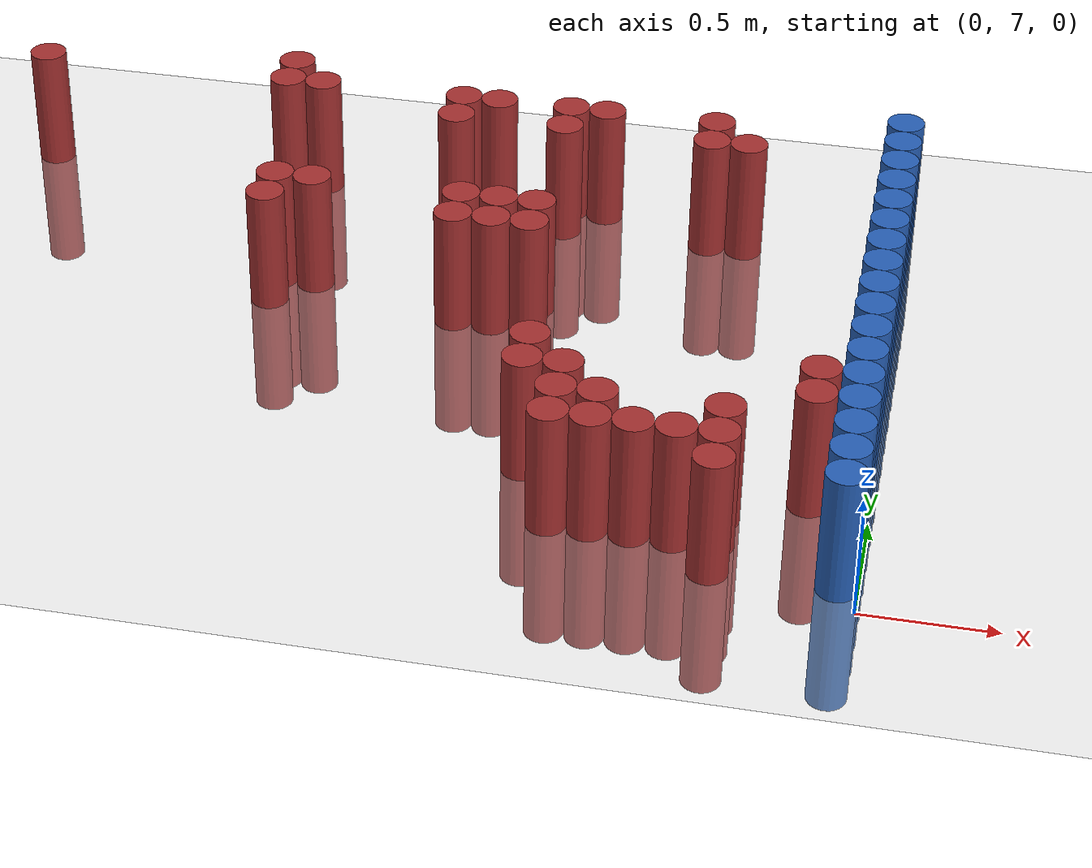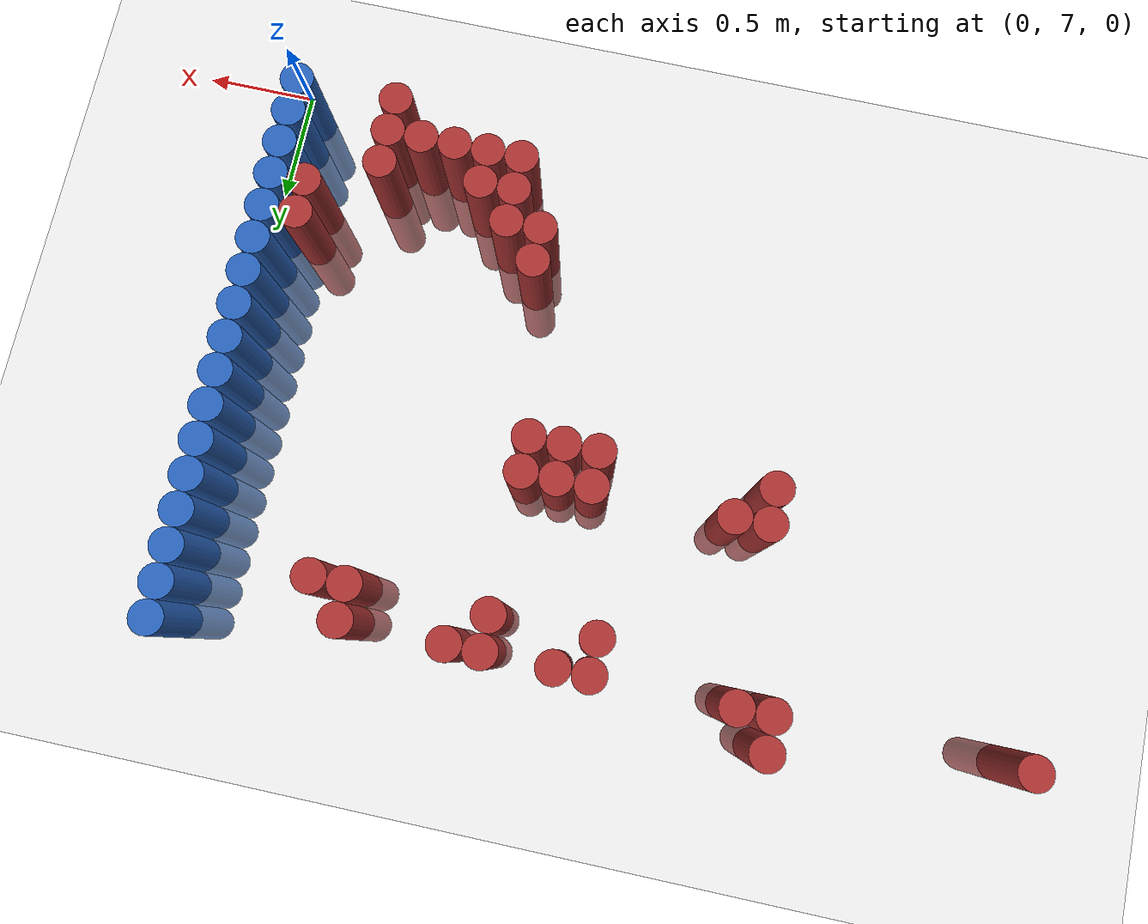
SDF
<sdf version="1.6">
 <world name="default">
  <model name="ground_plane">
   <static>1</static>
   <link name="link">
    <collision name="collision">
     <geometry><plane><normal>0 0 1</normal><size>100 100</size></plane></geometry>
     <surface><friction><ode><mu>100</mu><mu2>50</mu2></ode></friction></surface>
    </collision>
    <visual name="visual">
     <cast_shadows>0</cast_shadows>
     <geometry><plane><normal>0 0 1</normal><size>100 100</size></plane></geometry>
     <material>
      <script><uri>file://media/materials/scripts/gazebo.material</uri><name>Gazebo/Grey</name></script>
     </material>
    </visual>
   </link>
  </model>
  <model name="unit_cylinder_154">
   <static>1</static>
   <pose>-3.675000 9.375000 0.000000 0.000000 0.000000 0.000000</pose>
   <link name="link">
    <inertial>
     <mass>1</mass>
     <inertia><ixx>0.145833</ixx><ixy>0</ixy><ixz>0</ixz><iyy>0.145833</iyy><iyz>0</iyz><izz>0.125</izz></inertia>
    </inertial>
    <collision name="collision">
     <geometry><cylinder><radius>0.075000</radius><length>1</length></cylinder></geometry>
    </collision>
    <visual name="visual">
     <geometry><cylinder><radius>0.075000</radius><length>1</length></cylinder></geometry>
     <material>
      <ambient>0.648000 0.192000 0.192000 1</ambient>
      <diffuse>0.648000 0.192000 0.192000 1</diffuse>
     </material>
     <material>
      <script><name>Gazebo/Grey</name><uri>file://media/materials/scripts/gazebo.material</uri></script>
     </material>
    </visual>
   </link>
  </model>
  <model name="unit_cylinder_165">
   <static>1</static>
   <pose>-2.625000 9.375000 0.000000 0.000000 0.000000 0.000000</pose>
   <link name="link">
    <inertial>
     <mass>1</mass>
     <inertia><ixx>0.145833</ixx><ixy>0</ixy><ixz>0</ixz><iyy>0.145833</iyy><iyz>0</iyz><izz>0.125</izz></inertia>
    </inertial>
    <collision name="collision">
     <geometry><cylinder><radius>0.075000</radius><length>1</length></cylinder></geometry>
    </collision>
    <visual name="visual">
     <geometry><cylinder><radius>0.075000</radius><length>1</length></cylinder></geometry>
     <material>
      <ambient>0.648000 0.192000 0.192000 1</ambient>
      <diffuse>0.648000 0.192000 0.192000 1</diffuse>
     </material>
     <material>
      <script><name>Gazebo/Grey</name><uri>file://media/materials/scripts/gazebo.material</uri></script>
     </material>
    </visual>
   </link>
  </model>
  <model name="unit_cylinder_166">
   <static>1</static>
   <pose>-2.625000 9.525000 0.000000 0.000000 0.000000 0.000000</pose>
   <link name="link">
    <inertial>
     <mass>1</mass>
     <inertia><ixx>0.145833</ixx><ixy>0</ixy><ixz>0</ixz><iyy>0.145833</iyy><iyz>0</iyz><izz>0.125</izz></inertia>
    </inertial>
    <collision name="collision">
     <geometry><cylinder><radius>0.075000</radius><length>1</length></cylinder></geometry>
    </collision>
    <visual name="visual">
     <geometry><cylinder><radius>0.075000</radius><length>1</length></cylinder></geometry>
     <material>
      <ambient>0.648000 0.192000 0.192000 1</ambient>
      <diffuse>0.648000 0.192000 0.192000 1</diffuse>
     </material>
     <material>
      <script><name>Gazebo/Grey</name><uri>file://media/materials/scripts/gazebo.material</uri></script>
     </material>
    </visual>
   </link>
  </model>
  <model name="unit_cylinder_168">
   <static>1</static>
   <pose>-2.475000 8.475000 0.000000 0.000000 0.000000 0.000000</pose>
   <link name="link">
    <inertial>
     <mass>1</mass>
     <inertia><ixx>0.145833</ixx><ixy>0</ixy><ixz>0</ixz><iyy>0.145833</iyy><iyz>0</iyz><izz>0.125</izz></inertia>
    </inertial>
    <collision name="collision">
     <geometry><cylinder><radius>0.075000</radius><length>1</length></cylinder></geometry>
    </collision>
    <visual name="visual">
     <geometry><cylinder><radius>0.075000</radius><length>1</length></cylinder></geometry>
     <material>
      <ambient>0.648000 0.192000 0.192000 1</ambient>
      <diffuse>0.648000 0.192000 0.192000 1</diffuse>
     </material>
     <material>
      <script><name>Gazebo/Grey</name><uri>file://media/materials/scripts/gazebo.material</uri></script>
     </material>
    </visual>
   </link>
  </model>
  <model name="unit_cylinder_169">
   <static>1</static>
   <pose>-2.475000 8.625000 0.000000 0.000000 0.000000 0.000000</pose>
   <link name="link">
    <inertial>
     <mass>1</mass>
     <inertia><ixx>0.145833</ixx><ixy>0</ixy><ixz>0</ixz><iyy>0.145833</iyy><iyz>0</iyz><izz>0.125</izz></inertia>
    </inertial>
    <collision name="collision">
     <geometry><cylinder><radius>0.075000</radius><length>1</length></cylinder></geometry>
    </collision>
    <visual name="visual">
     <geometry><cylinder><radius>0.075000</radius><length>1</length></cylinder></geometry>
     <material>
      <ambient>0.648000 0.192000 0.192000 1</ambient>
      <diffuse>0.648000 0.192000 0.192000 1</diffuse>
     </material>
     <material>
      <script><name>Gazebo/Grey</name><uri>file://media/materials/scripts/gazebo.material</uri></script>
     </material>
    </visual>
   </link>
  </model>
  <model name="unit_cylinder_170">
   <static>1</static>
   <pose>-2.475000 9.375000 0.000000 0.000000 0.000000 0.000000</pose>
   <link name="link">
    <inertial>
     <mass>1</mass>
     <inertia><ixx>0.145833</ixx><ixy>0</ixy><ixz>0</ixz><iyy>0.145833</iyy><iyz>0</iyz><izz>0.125</izz></inertia>
    </inertial>
    <collision name="collision">
     <geometry><cylinder><radius>0.075000</radius><length>1</length></cylinder></geometry>
    </collision>
    <visual name="visual">
     <geometry><cylinder><radius>0.075000</radius><length>1</length></cylinder></geometry>
     <material>
      <ambient>0.648000 0.192000 0.192000 1</ambient>
      <diffuse>0.648000 0.192000 0.192000 1</diffuse>
     </material>
     <material>
      <script><name>Gazebo/Grey</name><uri>file://media/materials/scripts/gazebo.material</uri></script>
     </material>
    </visual>
   </link>
  </model>
  <model name="unit_cylinder_173">
   <static>1</static>
   <pose>-2.325000 8.625000 0.000000 0.000000 0.000000 0.000000</pose>
   <link name="link">
    <inertial>
     <mass>1</mass>
     <inertia><ixx>0.145833</ixx><ixy>0</ixy><ixz>0</ixz><iyy>0.145833</iyy><iyz>0</iyz><izz>0.125</izz></inertia>
    </inertial>
    <collision name="collision">
     <geometry><cylinder><radius>0.075000</radius><length>1</length></cylinder></geometry>
    </collision>
    <visual name="visual">
     <geometry><cylinder><radius>0.075000</radius><length>1</length></cylinder></geometry>
     <material>
      <ambient>0.648000 0.192000 0.192000 1</ambient>
      <diffuse>0.648000 0.192000 0.192000 1</diffuse>
     </material>
     <material>
      <script><name>Gazebo/Grey</name><uri>file://media/materials/scripts/gazebo.material</uri></script>
     </material>
    </visual>
   </link>
  </model>
  <model name="unit_cylinder_179">
   <static>1</static>
   <pose>-1.875000 9.225000 0.000000 0.000000 0.000000 0.000000</pose>
   <link name="link">
    <inertial>
     <mass>1</mass>
     <inertia><ixx>0.145833</ixx><ixy>0</ixy><ixz>0</ixz><iyy>0.145833</iyy><iyz>0</iyz><izz>0.125</izz></inertia>
    </inertial>
    <collision name="collision">
     <geometry><cylinder><radius>0.075000</radius><length>1</length></cylinder></geometry>
    </collision>
    <visual name="visual">
     <geometry><cylinder><radius>0.075000</radius><length>1</length></cylinder></geometry>
     <material>
      <ambient>0.648000 0.192000 0.192000 1</ambient>
      <diffuse>0.648000 0.192000 0.192000 1</diffuse>
     </material>
     <material>
      <script><name>Gazebo/Grey</name><uri>file://media/materials/scripts/gazebo.material</uri></script>
     </material>
    </visual>
   </link>
  </model>
  <model name="unit_cylinder_180">
   <static>1</static>
   <pose>-1.875000 9.375000 0.000000 0.000000 0.000000 0.000000</pose>
   <link name="link">
    <inertial>
     <mass>1</mass>
     <inertia><ixx>0.145833</ixx><ixy>0</ixy><ixz>0</ixz><iyy>0.145833</iyy><iyz>0</iyz><izz>0.125</izz></inertia>
    </inertial>
    <collision name="collision">
     <geometry><cylinder><radius>0.075000</radius><length>1</length></cylinder></geometry>
    </collision>
    <visual name="visual">
     <geometry><cylinder><radius>0.075000</radius><length>1</length></cylinder></geometry>
     <material>
      <ambient>0.648000 0.192000 0.192000 1</ambient>
      <diffuse>0.648000 0.192000 0.192000 1</diffuse>
     </material>
     <material>
      <script><name>Gazebo/Grey</name><uri>file://media/materials/scripts/gazebo.material</uri></script>
     </material>
    </visual>
   </link>
  </model>
  <model name="unit_cylinder_181">
   <static>1</static>
   <pose>-1.725000 8.475000 0.000000 0.000000 0.000000 0.000000</pose>
   <link name="link">
    <inertial>
     <mass>1</mass>
     <inertia><ixx>0.145833</ixx><ixy>0</ixy><ixz>0</ixz><iyy>0.145833</iyy><iyz>0</iyz><izz>0.125</izz></inertia>
    </inertial>
    <collision name="collision">
     <geometry><cylinder><radius>0.075000</radius><length>1</length></cylinder></geometry>
    </collision>
    <visual name="visual">
     <geometry><cylinder><radius>0.075000</radius><length>1</length></cylinder></geometry>
     <material>
      <ambient>0.648000 0.192000 0.192000 1</ambient>
      <diffuse>0.648000 0.192000 0.192000 1</diffuse>
     </material>
     <material>
      <script><name>Gazebo/Grey</name><uri>file://media/materials/scripts/gazebo.material</uri></script>
     </material>
    </visual>
   </link>
  </model>
  <model name="unit_cylinder_182">
   <static>1</static>
   <pose>-1.725000 8.625000 0.000000 0.000000 0.000000 0.000000</pose>
   <link name="link">
    <inertial>
     <mass>1</mass>
     <inertia><ixx>0.145833</ixx><ixy>0</ixy><ixz>0</ixz><iyy>0.145833</iyy><iyz>0</iyz><izz>0.125</izz></inertia>
    </inertial>
    <collision name="collision">
     <geometry><cylinder><radius>0.075000</radius><length>1</length></cylinder></geometry>
    </collision>
    <visual name="visual">
     <geometry><cylinder><radius>0.075000</radius><length>1</length></cylinder></geometry>
     <material>
      <ambient>0.648000 0.192000 0.192000 1</ambient>
      <diffuse>0.648000 0.192000 0.192000 1</diffuse>
     </material>
     <material>
      <script><name>Gazebo/Grey</name><uri>file://media/materials/scripts/gazebo.material</uri></script>
     </material>
    </visual>
   </link>
  </model>
  <model name="unit_cylinder_183">
   <static>1</static>
   <pose>-1.725000 9.375000 0.000000 0.000000 0.000000 0.000000</pose>
   <link name="link">
    <inertial>
     <mass>1</mass>
     <inertia><ixx>0.145833</ixx><ixy>0</ixy><ixz>0</ixz><iyy>0.145833</iyy><iyz>0</iyz><izz>0.125</izz></inertia>
    </inertial>
    <collision name="collision">
     <geometry><cylinder><radius>0.075000</radius><length>1</length></cylinder></geometry>
    </collision>
    <visual name="visual">
     <geometry><cylinder><radius>0.075000</radius><length>1</length></cylinder></geometry>
     <material>
      <ambient>0.648000 0.192000 0.192000 1</ambient>
      <diffuse>0.648000 0.192000 0.192000 1</diffuse>
     </material>
     <material>
      <script><name>Gazebo/Grey</name><uri>file://media/materials/scripts/gazebo.material</uri></script>
     </material>
    </visual>
   </link>
  </model>
  <model name="unit_cylinder_184">
   <static>1</static>
   <pose>-1.575000 8.475000 0.000000 0.000000 0.000000 0.000000</pose>
   <link name="link">
    <inertial>
     <mass>1</mass>
     <inertia><ixx>0.145833</ixx><ixy>0</ixy><ixz>0</ixz><iyy>0.145833</iyy><iyz>0</iyz><izz>0.125</izz></inertia>
    </inertial>
    <collision name="collision">
     <geometry><cylinder><radius>0.075000</radius><length>1</length></cylinder></geometry>
    </collision>
    <visual name="visual">
     <geometry><cylinder><radius>0.075000</radius><length>1</length></cylinder></geometry>
     <material>
      <ambient>0.648000 0.192000 0.192000 1</ambient>
      <diffuse>0.648000 0.192000 0.192000 1</diffuse>
     </material>
     <material>
      <script><name>Gazebo/Grey</name><uri>file://media/materials/scripts/gazebo.material</uri></script>
     </material>
    </visual>
   </link>
  </model>
  <model name="unit_cylinder_185">
   <static>1</static>
   <pose>-1.575000 8.625000 0.000000 0.000000 0.000000 0.000000</pose>
   <link name="link">
    <inertial>
     <mass>1</mass>
     <inertia><ixx>0.145833</ixx><ixy>0</ixy><ixz>0</ixz><iyy>0.145833</iyy><iyz>0</iyz><izz>0.125</izz></inertia>
    </inertial>
    <collision name="collision">
     <geometry><cylinder><radius>0.075000</radius><length>1</length></cylinder></geometry>
    </collision>
    <visual name="visual">
     <geometry><cylinder><radius>0.075000</radius><length>1</length></cylinder></geometry>
     <material>
      <ambient>0.648000 0.192000 0.192000 1</ambient>
      <diffuse>0.648000 0.192000 0.192000 1</diffuse>
     </material>
     <material>
      <script><name>Gazebo/Grey</name><uri>file://media/materials/scripts/gazebo.material</uri></script>
     </material>
    </visual>
   </link>
  </model>
  <model name="unit_cylinder_186">
   <static>1</static>
   <pose>-1.425000 8.475000 0.000000 0.000000 0.000000 0.000000</pose>
   <link name="link">
    <inertial>
     <mass>1</mass>
     <inertia><ixx>0.145833</ixx><ixy>0</ixy><ixz>0</ixz><iyy>0.145833</iyy><iyz>0</iyz><izz>0.125</izz></inertia>
    </inertial>
    <collision name="collision">
     <geometry><cylinder><radius>0.075000</radius><length>1</length></cylinder></geometry>
    </collision>
    <visual name="visual">
     <geometry><cylinder><radius>0.075000</radius><length>1</length></cylinder></geometry>
     <material>
      <ambient>0.648000 0.192000 0.192000 1</ambient>
      <diffuse>0.648000 0.192000 0.192000 1</diffuse>
     </material>
     <material>
      <script><name>Gazebo/Grey</name><uri>file://media/materials/scripts/gazebo.material</uri></script>
     </material>
    </visual>
   </link>
  </model>
  <model name="unit_cylinder_187">
   <static>1</static>
   <pose>-1.425000 8.625000 0.000000 0.000000 0.000000 0.000000</pose>
   <link name="link">
    <inertial>
     <mass>1</mass>
     <inertia><ixx>0.145833</ixx><ixy>0</ixy><ixz>0</ixz><iyy>0.145833</iyy><iyz>0</iyz><izz>0.125</izz></inertia>
    </inertial>
    <collision name="collision">
     <geometry><cylinder><radius>0.075000</radius><length>1</length></cylinder></geometry>
    </collision>
    <visual name="visual">
     <geometry><cylinder><radius>0.075000</radius><length>1</length></cylinder></geometry>
     <material>
      <ambient>0.648000 0.192000 0.192000 1</ambient>
      <diffuse>0.648000 0.192000 0.192000 1</diffuse>
     </material>
     <material>
      <script><name>Gazebo/Grey</name><uri>file://media/materials/scripts/gazebo.material</uri></script>
     </material>
    </visual>
   </link>
  </model>
  <model name="unit_cylinder_188">
   <static>1</static>
   <pose>-1.425000 9.225000 0.000000 0.000000 0.000000 0.000000</pose>
   <link name="link">
    <inertial>
     <mass>1</mass>
     <inertia><ixx>0.145833</ixx><ixy>0</ixy><ixz>0</ixz><iyy>0.145833</iyy><iyz>0</iyz><izz>0.125</izz></inertia>
    </inertial>
    <collision name="collision">
     <geometry><cylinder><radius>0.075000</radius><length>1</length></cylinder></geometry>
    </collision>
    <visual name="visual">
     <geometry><cylinder><radius>0.075000</radius><length>1</length></cylinder></geometry>
     <material>
      <ambient>0.648000 0.192000 0.192000 1</ambient>
      <diffuse>0.648000 0.192000 0.192000 1</diffuse>
     </material>
     <material>
      <script><name>Gazebo/Grey</name><uri>file://media/materials/scripts/gazebo.material</uri></script>
     </material>
    </visual>
   </link>
  </model>
  <model name="unit_cylinder_189">
   <static>1</static>
   <pose>-1.425000 9.375000 0.000000 0.000000 0.000000 0.000000</pose>
   <link name="link">
    <inertial>
     <mass>1</mass>
     <inertia><ixx>0.145833</ixx><ixy>0</ixy><ixz>0</ixz><iyy>0.145833</iyy><iyz>0</iyz><izz>0.125</izz></inertia>
    </inertial>
    <collision name="collision">
     <geometry><cylinder><radius>0.075000</radius><length>1</length></cylinder></geometry>
    </collision>
    <visual name="visual">
     <geometry><cylinder><radius>0.075000</radius><length>1</length></cylinder></geometry>
     <material>
      <ambient>0.648000 0.192000 0.192000 1</ambient>
      <diffuse>0.648000 0.192000 0.192000 1</diffuse>
     </material>
     <material>
      <script><name>Gazebo/Grey</name><uri>file://media/materials/scripts/gazebo.material</uri></script>
     </material>
    </visual>
   </link>
  </model>
  <model name="unit_cylinder_190">
   <static>1</static>
   <pose>-1.275000 7.575000 0.000000 0.000000 0.000000 0.000000</pose>
   <link name="link">
    <inertial>
     <mass>1</mass>
     <inertia><ixx>0.145833</ixx><ixy>0</ixy><ixz>0</ixz><iyy>0.145833</iyy><iyz>0</iyz><izz>0.125</izz></inertia>
    </inertial>
    <collision name="collision">
     <geometry><cylinder><radius>0.075000</radius><length>1</length></cylinder></geometry>
    </collision>
    <visual name="visual">
     <geometry><cylinder><radius>0.075000</radius><length>1</length></cylinder></geometry>
     <material>
      <ambient>0.648000 0.192000 0.192000 1</ambient>
      <diffuse>0.648000 0.192000 0.192000 1</diffuse>
     </material>
     <material>
      <script><name>Gazebo/Grey</name><uri>file://media/materials/scripts/gazebo.material</uri></script>
     </material>
    </visual>
   </link>
  </model>
  <model name="unit_cylinder_191">
   <static>1</static>
   <pose>-1.275000 7.725000 0.000000 0.000000 0.000000 0.000000</pose>
   <link name="link">
    <inertial>
     <mass>1</mass>
     <inertia><ixx>0.145833</ixx><ixy>0</ixy><ixz>0</ixz><iyy>0.145833</iyy><iyz>0</iyz><izz>0.125</izz></inertia>
    </inertial>
    <collision name="collision">
     <geometry><cylinder><radius>0.075000</radius><length>1</length></cylinder></geometry>
    </collision>
    <visual name="visual">
     <geometry><cylinder><radius>0.075000</radius><length>1</length></cylinder></geometry>
     <material>
      <ambient>0.648000 0.192000 0.192000 1</ambient>
      <diffuse>0.648000 0.192000 0.192000 1</diffuse>
     </material>
     <material>
      <script><name>Gazebo/Grey</name><uri>file://media/materials/scripts/gazebo.material</uri></script>
     </material>
    </visual>
   </link>
  </model>
  <model name="unit_cylinder_192">
   <static>1</static>
   <pose>-1.275000 9.375000 0.000000 0.000000 0.000000 0.000000</pose>
   <link name="link">
    <inertial>
     <mass>1</mass>
     <inertia><ixx>0.145833</ixx><ixy>0</ixy><ixz>0</ixz><iyy>0.145833</iyy><iyz>0</iyz><izz>0.125</izz></inertia>
    </inertial>
    <collision name="collision">
     <geometry><cylinder><radius>0.075000</radius><length>1</length></cylinder></geometry>
    </collision>
    <visual name="visual">
     <geometry><cylinder><radius>0.075000</radius><length>1</length></cylinder></geometry>
     <material>
      <ambient>0.648000 0.192000 0.192000 1</ambient>
      <diffuse>0.648000 0.192000 0.192000 1</diffuse>
     </material>
     <material>
      <script><name>Gazebo/Grey</name><uri>file://media/materials/scripts/gazebo.material</uri></script>
     </material>
    </visual>
   </link>
  </model>
  <model name="unit_cylinder_194">
   <static>1</static>
   <pose>-1.125000 7.275000 0.000000 0.000000 0.000000 0.000000</pose>
   <link name="link">
    <inertial>
     <mass>1</mass>
     <inertia><ixx>0.145833</ixx><ixy>0</ixy><ixz>0</ixz><iyy>0.145833</iyy><iyz>0</iyz><izz>0.125</izz></inertia>
    </inertial>
    <collision name="collision">
     <geometry><cylinder><radius>0.075000</radius><length>1</length></cylinder></geometry>
    </collision>
    <visual name="visual">
     <geometry><cylinder><radius>0.075000</radius><length>1</length></cylinder></geometry>
     <material>
      <ambient>0.648000 0.192000 0.192000 1</ambient>
      <diffuse>0.648000 0.192000 0.192000 1</diffuse>
     </material>
     <material>
      <script><name>Gazebo/Grey</name><uri>file://media/materials/scripts/gazebo.material</uri></script>
     </material>
    </visual>
   </link>
  </model>
  <model name="unit_cylinder_195">
   <static>1</static>
   <pose>-1.125000 7.425000 0.000000 0.000000 0.000000 0.000000</pose>
   <link name="link">
    <inertial>
     <mass>1</mass>
     <inertia><ixx>0.145833</ixx><ixy>0</ixy><ixz>0</ixz><iyy>0.145833</iyy><iyz>0</iyz><izz>0.125</izz></inertia>
    </inertial>
    <collision name="collision">
     <geometry><cylinder><radius>0.075000</radius><length>1</length></cylinder></geometry>
    </collision>
    <visual name="visual">
     <geometry><cylinder><radius>0.075000</radius><length>1</length></cylinder></geometry>
     <material>
      <ambient>0.648000 0.192000 0.192000 1</ambient>
      <diffuse>0.648000 0.192000 0.192000 1</diffuse>
     </material>
     <material>
      <script><name>Gazebo/Grey</name><uri>file://media/materials/scripts/gazebo.material</uri></script>
     </material>
    </visual>
   </link>
  </model>
  <model name="unit_cylinder_196">
   <static>1</static>
   <pose>-1.125000 7.575000 0.000000 0.000000 0.000000 0.000000</pose>
   <link name="link">
    <inertial>
     <mass>1</mass>
     <inertia><ixx>0.145833</ixx><ixy>0</ixy><ixz>0</ixz><iyy>0.145833</iyy><iyz>0</iyz><izz>0.125</izz></inertia>
    </inertial>
    <collision name="collision">
     <geometry><cylinder><radius>0.075000</radius><length>1</length></cylinder></geometry>
    </collision>
    <visual name="visual">
     <geometry><cylinder><radius>0.075000</radius><length>1</length></cylinder></geometry>
     <material>
      <ambient>0.648000 0.192000 0.192000 1</ambient>
      <diffuse>0.648000 0.192000 0.192000 1</diffuse>
     </material>
     <material>
      <script><name>Gazebo/Grey</name><uri>file://media/materials/scripts/gazebo.material</uri></script>
     </material>
    </visual>
   </link>
  </model>
  <model name="unit_cylinder_198">
   <static>1</static>
   <pose>-0.975000 7.275000 0.000000 0.000000 0.000000 0.000000</pose>
   <link name="link">
    <inertial>
     <mass>1</mass>
     <inertia><ixx>0.145833</ixx><ixy>0</ixy><ixz>0</ixz><iyy>0.145833</iyy><iyz>0</iyz><izz>0.125</izz></inertia>
    </inertial>
    <collision name="collision">
     <geometry><cylinder><radius>0.075000</radius><length>1</length></cylinder></geometry>
    </collision>
    <visual name="visual">
     <geometry><cylinder><radius>0.075000</radius><length>1</length></cylinder></geometry>
     <material>
      <ambient>0.648000 0.192000 0.192000 1</ambient>
      <diffuse>0.648000 0.192000 0.192000 1</diffuse>
     </material>
     <material>
      <script><name>Gazebo/Grey</name><uri>file://media/materials/scripts/gazebo.material</uri></script>
     </material>
    </visual>
   </link>
  </model>
  <model name="unit_cylinder_199">
   <static>1</static>
   <pose>-0.975000 7.425000 0.000000 0.000000 0.000000 0.000000</pose>
   <link name="link">
    <inertial>
     <mass>1</mass>
     <inertia><ixx>0.145833</ixx><ixy>0</ixy><ixz>0</ixz><iyy>0.145833</iyy><iyz>0</iyz><izz>0.125</izz></inertia>
    </inertial>
    <collision name="collision">
     <geometry><cylinder><radius>0.075000</radius><length>1</length></cylinder></geometry>
    </collision>
    <visual name="visual">
     <geometry><cylinder><radius>0.075000</radius><length>1</length></cylinder></geometry>
     <material>
      <ambient>0.648000 0.192000 0.192000 1</ambient>
      <diffuse>0.648000 0.192000 0.192000 1</diffuse>
     </material>
     <material>
      <script><name>Gazebo/Grey</name><uri>file://media/materials/scripts/gazebo.material</uri></script>
     </material>
    </visual>
   </link>
  </model>
  <model name="unit_cylinder_203">
   <static>1</static>
   <pose>-0.825000 7.275000 0.000000 0.000000 0.000000 0.000000</pose>
   <link name="link">
    <inertial>
     <mass>1</mass>
     <inertia><ixx>0.145833</ixx><ixy>0</ixy><ixz>0</ixz><iyy>0.145833</iyy><iyz>0</iyz><izz>0.125</izz></inertia>
    </inertial>
    <collision name="collision">
     <geometry><cylinder><radius>0.075000</radius><length>1</length></cylinder></geometry>
    </collision>
    <visual name="visual">
     <geometry><cylinder><radius>0.075000</radius><length>1</length></cylinder></geometry>
     <material>
      <ambient>0.648000 0.192000 0.192000 1</ambient>
      <diffuse>0.648000 0.192000 0.192000 1</diffuse>
     </material>
     <material>
      <script><name>Gazebo/Grey</name><uri>file://media/materials/scripts/gazebo.material</uri></script>
     </material>
    </visual>
   </link>
  </model>
  <model name="unit_cylinder_204">
   <static>1</static>
   <pose>-0.825000 9.225000 0.000000 0.000000 0.000000 0.000000</pose>
   <link name="link">
    <inertial>
     <mass>1</mass>
     <inertia><ixx>0.145833</ixx><ixy>0</ixy><ixz>0</ixz><iyy>0.145833</iyy><iyz>0</iyz><izz>0.125</izz></inertia>
    </inertial>
    <collision name="collision">
     <geometry><cylinder><radius>0.075000</radius><length>1</length></cylinder></geometry>
    </collision>
    <visual name="visual">
     <geometry><cylinder><radius>0.075000</radius><length>1</length></cylinder></geometry>
     <material>
      <ambient>0.648000 0.192000 0.192000 1</ambient>
      <diffuse>0.648000 0.192000 0.192000 1</diffuse>
     </material>
     <material>
      <script><name>Gazebo/Grey</name><uri>file://media/materials/scripts/gazebo.material</uri></script>
     </material>
    </visual>
   </link>
  </model>
  <model name="unit_cylinder_205">
   <static>1</static>
   <pose>-0.825000 9.375000 0.000000 0.000000 0.000000 0.000000</pose>
   <link name="link">
    <inertial>
     <mass>1</mass>
     <inertia><ixx>0.145833</ixx><ixy>0</ixy><ixz>0</ixz><iyy>0.145833</iyy><iyz>0</iyz><izz>0.125</izz></inertia>
    </inertial>
    <collision name="collision">
     <geometry><cylinder><radius>0.075000</radius><length>1</length></cylinder></geometry>
    </collision>
    <visual name="visual">
     <geometry><cylinder><radius>0.075000</radius><length>1</length></cylinder></geometry>
     <material>
      <ambient>0.648000 0.192000 0.192000 1</ambient>
      <diffuse>0.648000 0.192000 0.192000 1</diffuse>
     </material>
     <material>
      <script><name>Gazebo/Grey</name><uri>file://media/materials/scripts/gazebo.material</uri></script>
     </material>
    </visual>
   </link>
  </model>
  <model name="unit_cylinder_209">
   <static>1</static>
   <pose>-0.675000 7.275000 0.000000 0.000000 0.000000 0.000000</pose>
   <link name="link">
    <inertial>
     <mass>1</mass>
     <inertia><ixx>0.145833</ixx><ixy>0</ixy><ixz>0</ixz><iyy>0.145833</iyy><iyz>0</iyz><izz>0.125</izz></inertia>
    </inertial>
    <collision name="collision">
     <geometry><cylinder><radius>0.075000</radius><length>1</length></cylinder></geometry>
    </collision>
    <visual name="visual">
     <geometry><cylinder><radius>0.075000</radius><length>1</length></cylinder></geometry>
     <material>
      <ambient>0.648000 0.192000 0.192000 1</ambient>
      <diffuse>0.648000 0.192000 0.192000 1</diffuse>
     </material>
     <material>
      <script><name>Gazebo/Grey</name><uri>file://media/materials/scripts/gazebo.material</uri></script>
     </material>
    </visual>
   </link>
  </model>
  <model name="unit_cylinder_210">
   <static>1</static>
   <pose>-0.675000 9.225000 0.000000 0.000000 0.000000 0.000000</pose>
   <link name="link">
    <inertial>
     <mass>1</mass>
     <inertia><ixx>0.145833</ixx><ixy>0</ixy><ixz>0</ixz><iyy>0.145833</iyy><iyz>0</iyz><izz>0.125</izz></inertia>
    </inertial>
    <collision name="collision">
     <geometry><cylinder><radius>0.075000</radius><length>1</length></cylinder></geometry>
    </collision>
    <visual name="visual">
     <geometry><cylinder><radius>0.075000</radius><length>1</length></cylinder></geometry>
     <material>
      <ambient>0.648000 0.192000 0.192000 1</ambient>
      <diffuse>0.648000 0.192000 0.192000 1</diffuse>
     </material>
     <material>
      <script><name>Gazebo/Grey</name><uri>file://media/materials/scripts/gazebo.material</uri></script>
     </material>
    </visual>
   </link>
  </model>
  <model name="unit_cylinder_214">
   <static>1</static>
   <pose>-0.525000 7.125000 0.000000 0.000000 0.000000 0.000000</pose>
   <link name="link">
    <inertial>
     <mass>1</mass>
     <inertia><ixx>0.145833</ixx><ixy>0</ixy><ixz>0</ixz><iyy>0.145833</iyy><iyz>0</iyz><izz>0.125</izz></inertia>
    </inertial>
    <collision name="collision">
     <geometry><cylinder><radius>0.075000</radius><length>1</length></cylinder></geometry>
    </collision>
    <visual name="visual">
     <geometry><cylinder><radius>0.075000</radius><length>1</length></cylinder></geometry>
     <material>
      <ambient>0.648000 0.192000 0.192000 1</ambient>
      <diffuse>0.648000 0.192000 0.192000 1</diffuse>
     </material>
     <material>
      <script><name>Gazebo/Grey</name><uri>file://media/materials/scripts/gazebo.material</uri></script>
     </material>
    </visual>
   </link>
  </model>
  <model name="unit_cylinder_215">
   <static>1</static>
   <pose>-0.525000 7.275000 0.000000 0.000000 0.000000 0.000000</pose>
   <link name="link">
    <inertial>
     <mass>1</mass>
     <inertia><ixx>0.145833</ixx><ixy>0</ixy><ixz>0</ixz><iyy>0.145833</iyy><iyz>0</iyz><izz>0.125</izz></inertia>
    </inertial>
    <collision name="collision">
     <geometry><cylinder><radius>0.075000</radius><length>1</length></cylinder></geometry>
    </collision>
    <visual name="visual">
     <geometry><cylinder><radius>0.075000</radius><length>1</length></cylinder></geometry>
     <material>
      <ambient>0.648000 0.192000 0.192000 1</ambient>
      <diffuse>0.648000 0.192000 0.192000 1</diffuse>
     </material>
     <material>
      <script><name>Gazebo/Grey</name><uri>file://media/materials/scripts/gazebo.material</uri></script>
     </material>
    </visual>
   </link>
  </model>
  <model name="unit_cylinder_216">
   <static>1</static>
   <pose>-0.525000 7.425000 0.000000 0.000000 0.000000 0.000000</pose>
   <link name="link">
    <inertial>
     <mass>1</mass>
     <inertia><ixx>0.145833</ixx><ixy>0</ixy><ixz>0</ixz><iyy>0.145833</iyy><iyz>0</iyz><izz>0.125</izz></inertia>
    </inertial>
    <collision name="collision">
     <geometry><cylinder><radius>0.075000</radius><length>1</length></cylinder></geometry>
    </collision>
    <visual name="visual">
     <geometry><cylinder><radius>0.075000</radius><length>1</length></cylinder></geometry>
     <material>
      <ambient>0.648000 0.192000 0.192000 1</ambient>
      <diffuse>0.648000 0.192000 0.192000 1</diffuse>
     </material>
     <material>
      <script><name>Gazebo/Grey</name><uri>file://media/materials/scripts/gazebo.material</uri></script>
     </material>
    </visual>
   </link>
  </model>
  <model name="unit_cylinder_230">
   <static>1</static>
   <pose>-0.225000 7.575000 0.000000 0.000000 0.000000 0.000000</pose>
   <link name="link">
    <inertial>
     <mass>1</mass>
     <inertia><ixx>0.145833</ixx><ixy>0</ixy><ixz>0</ixz><iyy>0.145833</iyy><iyz>0</iyz><izz>0.125</izz></inertia>
    </inertial>
    <collision name="collision">
     <geometry><cylinder><radius>0.075000</radius><length>1</length></cylinder></geometry>
    </collision>
    <visual name="visual">
     <geometry><cylinder><radius>0.075000</radius><length>1</length></cylinder></geometry>
     <material>
      <ambient>0.648000 0.192000 0.192000 1</ambient>
      <diffuse>0.648000 0.192000 0.192000 1</diffuse>
     </material>
     <material>
      <script><name>Gazebo/Grey</name><uri>file://media/materials/scripts/gazebo.material</uri></script>
     </material>
    </visual>
   </link>
  </model>
  <model name="unit_cylinder_231">
   <static>1</static>
   <pose>-0.225000 7.725000 0.000000 0.000000 0.000000 0.000000</pose>
   <link name="link">
    <inertial>
     <mass>1</mass>
     <inertia><ixx>0.145833</ixx><ixy>0</ixy><ixz>0</ixz><iyy>0.145833</iyy><iyz>0</iyz><izz>0.125</izz></inertia>
    </inertial>
    <collision name="collision">
     <geometry><cylinder><radius>0.075000</radius><length>1</length></cylinder></geometry>
    </collision>
    <visual name="visual">
     <geometry><cylinder><radius>0.075000</radius><length>1</length></cylinder></geometry>
     <material>
      <ambient>0.648000 0.192000 0.192000 1</ambient>
      <diffuse>0.648000 0.192000 0.192000 1</diffuse>
     </material>
     <material>
      <script><name>Gazebo/Grey</name><uri>file://media/materials/scripts/gazebo.material</uri></script>
     </material>
    </visual>
   </link>
  </model>
  <model name="unit_cylinder_245">
   <static>1</static>
   <pose>-0.075000 7.125000 0.000000 0.000000 0.000000 0.000000</pose>
   <link name="link">
    <inertial>
     <mass>1</mass>
     <inertia><ixx>0.145833</ixx><ixy>0</ixy><ixz>0</ixz><iyy>0.145833</iyy><iyz>0</iyz><izz>0.125</izz></inertia>
    </inertial>
    <collision name="collision">
     <geometry><cylinder><radius>0.075000</radius><length>1</length></cylinder></geometry>
    </collision>
    <visual name="visual">
     <geometry><cylinder><radius>0.075000</radius><length>1</length></cylinder></geometry>
     <material>
      <ambient>0.152000 0.379000 0.720000 1</ambient>
      <diffuse>0.152000 0.379000 0.720000 1</diffuse>
     </material>
     <material>
      <script><name>Gazebo/Grey</name><uri>file://media/materials/scripts/gazebo.material</uri></script>
     </material>
    </visual>
   </link>
  </model>
  <model name="unit_cylinder_246">
   <static>1</static>
   <pose>-0.075000 7.275000 0.000000 0.000000 0.000000 0.000000</pose>
   <link name="link">
    <inertial>
     <mass>1</mass>
     <inertia><ixx>0.145833</ixx><ixy>0</ixy><ixz>0</ixz><iyy>0.145833</iyy><iyz>0</iyz><izz>0.125</izz></inertia>
    </inertial>
    <collision name="collision">
     <geometry><cylinder><radius>0.075000</radius><length>1</length></cylinder></geometry>
    </collision>
    <visual name="visual">
     <geometry><cylinder><radius>0.075000</radius><length>1</length></cylinder></geometry>
     <material>
      <ambient>0.152000 0.379000 0.720000 1</ambient>
      <diffuse>0.152000 0.379000 0.720000 1</diffuse>
     </material>
     <material>
      <script><name>Gazebo/Grey</name><uri>file://media/materials/scripts/gazebo.material</uri></script>
     </material>
    </visual>
   </link>
  </model>
  <model name="unit_cylinder_247">
   <static>1</static>
   <pose>-0.075000 7.425000 0.000000 0.000000 0.000000 0.000000</pose>
   <link name="link">
    <inertial>
     <mass>1</mass>
     <inertia><ixx>0.145833</ixx><ixy>0</ixy><ixz>0</ixz><iyy>0.145833</iyy><iyz>0</iyz><izz>0.125</izz></inertia>
    </inertial>
    <collision name="collision">
     <geometry><cylinder><radius>0.075000</radius><length>1</length></cylinder></geometry>
    </collision>
    <visual name="visual">
     <geometry><cylinder><radius>0.075000</radius><length>1</length></cylinder></geometry>
     <material>
      <ambient>0.152000 0.379000 0.720000 1</ambient>
      <diffuse>0.152000 0.379000 0.720000 1</diffuse>
     </material>
     <material>
      <script><name>Gazebo/Grey</name><uri>file://media/materials/scripts/gazebo.material</uri></script>
     </material>
    </visual>
   </link>
  </model>
  <model name="unit_cylinder_248">
   <static>1</static>
   <pose>-0.075000 7.575000 0.000000 0.000000 0.000000 0.000000</pose>
   <link name="link">
    <inertial>
     <mass>1</mass>
     <inertia><ixx>0.145833</ixx><ixy>0</ixy><ixz>0</ixz><iyy>0.145833</iyy><iyz>0</iyz><izz>0.125</izz></inertia>
    </inertial>
    <collision name="collision">
     <geometry><cylinder><radius>0.075000</radius><length>1</length></cylinder></geometry>
    </collision>
    <visual name="visual">
     <geometry><cylinder><radius>0.075000</radius><length>1</length></cylinder></geometry>
     <material>
      <ambient>0.152000 0.379000 0.720000 1</ambient>
      <diffuse>0.152000 0.379000 0.720000 1</diffuse>
     </material>
     <material>
      <script><name>Gazebo/Grey</name><uri>file://media/materials/scripts/gazebo.material</uri></script>
     </material>
    </visual>
   </link>
  </model>
  <model name="unit_cylinder_249">
   <static>1</static>
   <pose>-0.075000 7.725000 0.000000 0.000000 0.000000 0.000000</pose>
   <link name="link">
    <inertial>
     <mass>1</mass>
     <inertia><ixx>0.145833</ixx><ixy>0</ixy><ixz>0</ixz><iyy>0.145833</iyy><iyz>0</iyz><izz>0.125</izz></inertia>
    </inertial>
    <collision name="collision">
     <geometry><cylinder><radius>0.075000</radius><length>1</length></cylinder></geometry>
    </collision>
    <visual name="visual">
     <geometry><cylinder><radius>0.075000</radius><length>1</length></cylinder></geometry>
     <material>
      <ambient>0.152000 0.379000 0.720000 1</ambient>
      <diffuse>0.152000 0.379000 0.720000 1</diffuse>
     </material>
     <material>
      <script><name>Gazebo/Grey</name><uri>file://media/materials/scripts/gazebo.material</uri></script>
     </material>
    </visual>
   </link>
  </model>
  <model name="unit_cylinder_250">
   <static>1</static>
   <pose>-0.075000 7.875000 0.000000 0.000000 0.000000 0.000000</pose>
   <link name="link">
    <inertial>
     <mass>1</mass>
     <inertia><ixx>0.145833</ixx><ixy>0</ixy><ixz>0</ixz><iyy>0.145833</iyy><iyz>0</iyz><izz>0.125</izz></inertia>
    </inertial>
    <collision name="collision">
     <geometry><cylinder><radius>0.075000</radius><length>1</length></cylinder></geometry>
    </collision>
    <visual name="visual">
     <geometry><cylinder><radius>0.075000</radius><length>1</length></cylinder></geometry>
     <material>
      <ambient>0.152000 0.379000 0.720000 1</ambient>
      <diffuse>0.152000 0.379000 0.720000 1</diffuse>
     </material>
     <material>
      <script><name>Gazebo/Grey</name><uri>file://media/materials/scripts/gazebo.material</uri></script>
     </material>
    </visual>
   </link>
  </model>
  <model name="unit_cylinder_251">
   <static>1</static>
   <pose>-0.075000 8.025000 0.000000 0.000000 0.000000 0.000000</pose>
   <link name="link">
    <inertial>
     <mass>1</mass>
     <inertia><ixx>0.145833</ixx><ixy>0</ixy><ixz>0</ixz><iyy>0.145833</iyy><iyz>0</iyz><izz>0.125</izz></inertia>
    </inertial>
    <collision name="collision">
     <geometry><cylinder><radius>0.075000</radius><length>1</length></cylinder></geometry>
    </collision>
    <visual name="visual">
     <geometry><cylinder><radius>0.075000</radius><length>1</length></cylinder></geometry>
     <material>
      <ambient>0.152000 0.379000 0.720000 1</ambient>
      <diffuse>0.152000 0.379000 0.720000 1</diffuse>
     </material>
     <material>
      <script><name>Gazebo/Grey</name><uri>file://media/materials/scripts/gazebo.material</uri></script>
     </material>
    </visual>
   </link>
  </model>
  <model name="unit_cylinder_252">
   <static>1</static>
   <pose>-0.075000 8.175000 0.000000 0.000000 0.000000 0.000000</pose>
   <link name="link">
    <inertial>
     <mass>1</mass>
     <inertia><ixx>0.145833</ixx><ixy>0</ixy><ixz>0</ixz><iyy>0.145833</iyy><iyz>0</iyz><izz>0.125</izz></inertia>
    </inertial>
    <collision name="collision">
     <geometry><cylinder><radius>0.075000</radius><length>1</length></cylinder></geometry>
    </collision>
    <visual name="visual">
     <geometry><cylinder><radius>0.075000</radius><length>1</length></cylinder></geometry>
     <material>
      <ambient>0.152000 0.379000 0.720000 1</ambient>
      <diffuse>0.152000 0.379000 0.720000 1</diffuse>
     </material>
     <material>
      <script><name>Gazebo/Grey</name><uri>file://media/materials/scripts/gazebo.material</uri></script>
     </material>
    </visual>
   </link>
  </model>
  <model name="unit_cylinder_253">
   <static>1</static>
   <pose>-0.075000 8.325000 0.000000 0.000000 0.000000 0.000000</pose>
   <link name="link">
    <inertial>
     <mass>1</mass>
     <inertia><ixx>0.145833</ixx><ixy>0</ixy><ixz>0</ixz><iyy>0.145833</iyy><iyz>0</iyz><izz>0.125</izz></inertia>
    </inertial>
    <collision name="collision">
     <geometry><cylinder><radius>0.075000</radius><length>1</length></cylinder></geometry>
    </collision>
    <visual name="visual">
     <geometry><cylinder><radius>0.075000</radius><length>1</length></cylinder></geometry>
     <material>
      <ambient>0.152000 0.379000 0.720000 1</ambient>
      <diffuse>0.152000 0.379000 0.720000 1</diffuse>
     </material>
     <material>
      <script><name>Gazebo/Grey</name><uri>file://media/materials/scripts/gazebo.material</uri></script>
     </material>
    </visual>
   </link>
  </model>
  <model name="unit_cylinder_254">
   <static>1</static>
   <pose>-0.075000 8.475000 0.000000 0.000000 0.000000 0.000000</pose>
   <link name="link">
    <inertial>
     <mass>1</mass>
     <inertia><ixx>0.145833</ixx><ixy>0</ixy><ixz>0</ixz><iyy>0.145833</iyy><iyz>0</iyz><izz>0.125</izz></inertia>
    </inertial>
    <collision name="collision">
     <geometry><cylinder><radius>0.075000</radius><length>1</length></cylinder></geometry>
    </collision>
    <visual name="visual">
     <geometry><cylinder><radius>0.075000</radius><length>1</length></cylinder></geometry>
     <material>
      <ambient>0.152000 0.379000 0.720000 1</ambient>
      <diffuse>0.152000 0.379000 0.720000 1</diffuse>
     </material>
     <material>
      <script><name>Gazebo/Grey</name><uri>file://media/materials/scripts/gazebo.material</uri></script>
     </material>
    </visual>
   </link>
  </model>
  <model name="unit_cylinder_255">
   <static>1</static>
   <pose>-0.075000 8.625000 0.000000 0.000000 0.000000 0.000000</pose>
   <link name="link">
    <inertial>
     <mass>1</mass>
     <inertia><ixx>0.145833</ixx><ixy>0</ixy><ixz>0</ixz><iyy>0.145833</iyy><iyz>0</iyz><izz>0.125</izz></inertia>
    </inertial>
    <collision name="collision">
     <geometry><cylinder><radius>0.075000</radius><length>1</length></cylinder></geometry>
    </collision>
    <visual name="visual">
     <geometry><cylinder><radius>0.075000</radius><length>1</length></cylinder></geometry>
     <material>
      <ambient>0.152000 0.379000 0.720000 1</ambient>
      <diffuse>0.152000 0.379000 0.720000 1</diffuse>
     </material>
     <material>
      <script><name>Gazebo/Grey</name><uri>file://media/materials/scripts/gazebo.material</uri></script>
     </material>
    </visual>
   </link>
  </model>
  <model name="unit_cylinder_256">
   <static>1</static>
   <pose>-0.075000 8.775000 0.000000 0.000000 0.000000 0.000000</pose>
   <link name="link">
    <inertial>
     <mass>1</mass>
     <inertia><ixx>0.145833</ixx><ixy>0</ixy><ixz>0</ixz><iyy>0.145833</iyy><iyz>0</iyz><izz>0.125</izz></inertia>
    </inertial>
    <collision name="collision">
     <geometry><cylinder><radius>0.075000</radius><length>1</length></cylinder></geometry>
    </collision>
    <visual name="visual">
     <geometry><cylinder><radius>0.075000</radius><length>1</length></cylinder></geometry>
     <material>
      <ambient>0.152000 0.379000 0.720000 1</ambient>
      <diffuse>0.152000 0.379000 0.720000 1</diffuse>
     </material>
     <material>
      <script><name>Gazebo/Grey</name><uri>file://media/materials/scripts/gazebo.material</uri></script>
     </material>
    </visual>
   </link>
  </model>
  <model name="unit_cylinder_257">
   <static>1</static>
   <pose>-0.075000 8.925000 0.000000 0.000000 0.000000 0.000000</pose>
   <link name="link">
    <inertial>
     <mass>1</mass>
     <inertia><ixx>0.145833</ixx><ixy>0</ixy><ixz>0</ixz><iyy>0.145833</iyy><iyz>0</iyz><izz>0.125</izz></inertia>
    </inertial>
    <collision name="collision">
     <geometry><cylinder><radius>0.075000</radius><length>1</length></cylinder></geometry>
    </collision>
    <visual name="visual">
     <geometry><cylinder><radius>0.075000</radius><length>1</length></cylinder></geometry>
     <material>
      <ambient>0.152000 0.379000 0.720000 1</ambient>
      <diffuse>0.152000 0.379000 0.720000 1</diffuse>
     </material>
     <material>
      <script><name>Gazebo/Grey</name><uri>file://media/materials/scripts/gazebo.material</uri></script>
     </material>
    </visual>
   </link>
  </model>
  <model name="unit_cylinder_258">
   <static>1</static>
   <pose>-0.075000 9.075000 0.000000 0.000000 0.000000 0.000000</pose>
   <link name="link">
    <inertial>
     <mass>1</mass>
     <inertia><ixx>0.145833</ixx><ixy>0</ixy><ixz>0</ixz><iyy>0.145833</iyy><iyz>0</iyz><izz>0.125</izz></inertia>
    </inertial>
    <collision name="collision">
     <geometry><cylinder><radius>0.075000</radius><length>1</length></cylinder></geometry>
    </collision>
    <visual name="visual">
     <geometry><cylinder><radius>0.075000</radius><length>1</length></cylinder></geometry>
     <material>
      <ambient>0.152000 0.379000 0.720000 1</ambient>
      <diffuse>0.152000 0.379000 0.720000 1</diffuse>
     </material>
     <material>
      <script><name>Gazebo/Grey</name><uri>file://media/materials/scripts/gazebo.material</uri></script>
     </material>
    </visual>
   </link>
  </model>
  <model name="unit_cylinder_259">
   <static>1</static>
   <pose>-0.075000 9.225000 0.000000 0.000000 0.000000 0.000000</pose>
   <link name="link">
    <inertial>
     <mass>1</mass>
     <inertia><ixx>0.145833</ixx><ixy>0</ixy><ixz>0</ixz><iyy>0.145833</iyy><iyz>0</iyz><izz>0.125</izz></inertia>
    </inertial>
    <collision name="collision">
     <geometry><cylinder><radius>0.075000</radius><length>1</length></cylinder></geometry>
    </collision>
    <visual name="visual">
     <geometry><cylinder><radius>0.075000</radius><length>1</length></cylinder></geometry>
     <material>
      <ambient>0.152000 0.379000 0.720000 1</ambient>
      <diffuse>0.152000 0.379000 0.720000 1</diffuse>
     </material>
     <material>
      <script><name>Gazebo/Grey</name><uri>file://media/materials/scripts/gazebo.material</uri></script>
     </material>
    </visual>
   </link>
  </model>
  <model name="unit_cylinder_260">
   <static>1</static>
   <pose>-0.075000 9.375000 0.000000 0.000000 0.000000 0.000000</pose>
   <link name="link">
    <inertial>
     <mass>1</mass>
     <inertia><ixx>0.145833</ixx><ixy>0</ixy><ixz>0</ixz><iyy>0.145833</iyy><iyz>0</iyz><izz>0.125</izz></inertia>
    </inertial>
    <collision name="collision">
     <geometry><cylinder><radius>0.075000</radius><length>1</length></cylinder></geometry>
    </collision>
    <visual name="visual">
     <geometry><cylinder><radius>0.075000</radius><length>1</length></cylinder></geometry>
     <material>
      <ambient>0.152000 0.379000 0.720000 1</ambient>
      <diffuse>0.152000 0.379000 0.720000 1</diffuse>
     </material>
     <material>
      <script><name>Gazebo/Grey</name><uri>file://media/materials/scripts/gazebo.material</uri></script>
     </material>
    </visual>
   </link>
  </model>
  <model name="unit_cylinder_261">
   <static>1</static>
   <pose>-0.075000 9.525000 0.000000 0.000000 0.000000 0.000000</pose>
   <link name="link">
    <inertial>
     <mass>1</mass>
     <inertia><ixx>0.145833</ixx><ixy>0</ixy><ixz>0</ixz><iyy>0.145833</iyy><iyz>0</iyz><izz>0.125</izz></inertia>
    </inertial>
    <collision name="collision">
     <geometry><cylinder><radius>0.075000</radius><length>1</length></cylinder></geometry>
    </collision>
    <visual name="visual">
     <geometry><cylinder><radius>0.075000</radius><length>1</length></cylinder></geometry>
     <material>
      <ambient>0.152000 0.379000 0.720000 1</ambient>
      <diffuse>0.152000 0.379000 0.720000 1</diffuse>
     </material>
     <material>
      <script><name>Gazebo/Grey</name><uri>file://media/materials/scripts/gazebo.material</uri></script>
     </material>
    </visual>
   </link>
  </model>
 </world>
</sdf>
